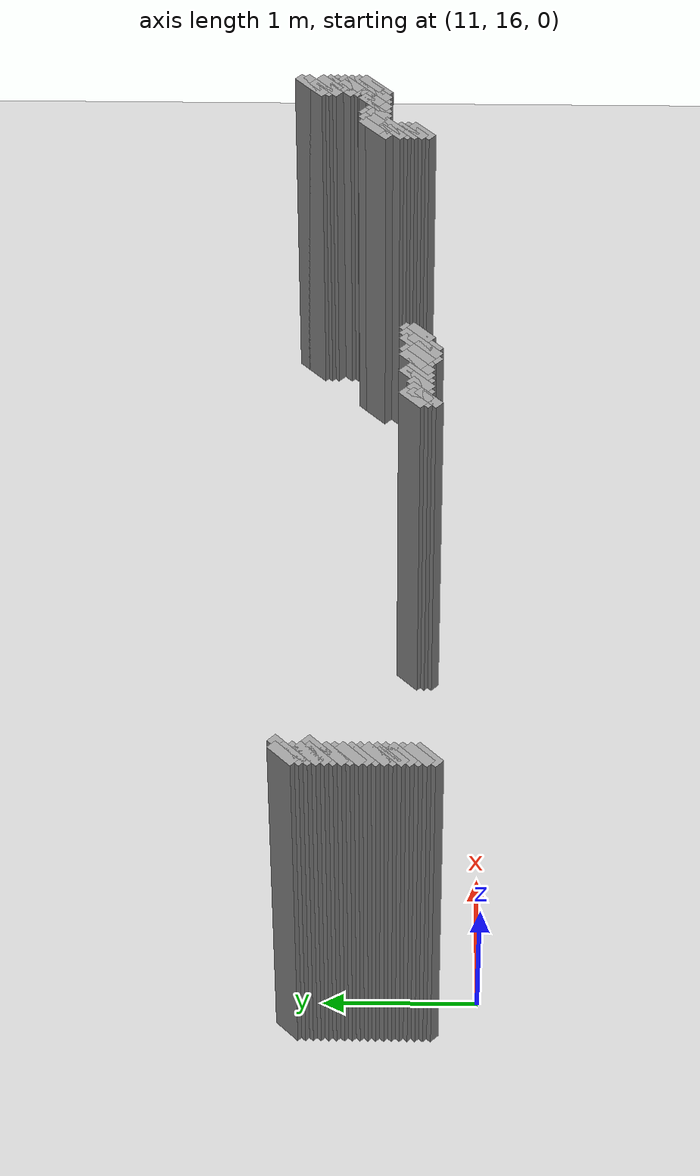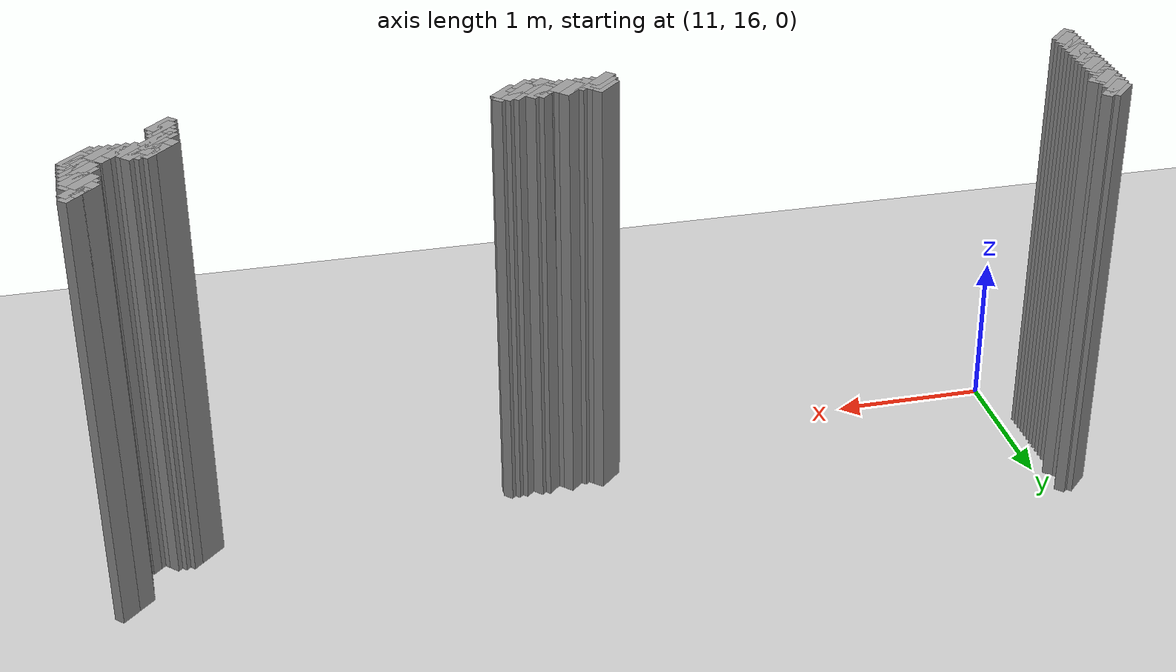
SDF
<sdf version="1.5">
 <world name="default">
  <include><uri>model://ground_plane</uri></include>
  <include><uri>model://sun</uri></include>
  <model name="grey_wall_389">
   <static>1</static>
   <link name="link">
    <pose>10.8 17.2  1.4 0 0 -0.785398163397</pose>
    <collision name="collision"><geometry><box><size>0.0707106781187 .2  2.8</size></box></geometry></collision>
    <visual name="visual">
     <cast_shadows>0</cast_shadows>
     <geometry><box><size>0.0707106781187 .2  2.8</size></box></geometry>
     <material>
      <script>
       <uri>model://grey_wall/materials/scripts</uri>
       <uri>model://grey_wall/materials/textures</uri>
       <name>vrc/grey_wall</name>
      </script>
     </material>
    </visual>
   </link>
  </model>
  <model name="grey_wall_390">
   <static>1</static>
   <link name="link">
    <pose>10.85 17.2  1.4 0 0 -0.785398163397</pose>
    <collision name="collision"><geometry><box><size>0.0707106781187 .2  2.8</size></box></geometry></collision>
    <visual name="visual">
     <cast_shadows>0</cast_shadows>
     <geometry><box><size>0.0707106781187 .2  2.8</size></box></geometry>
     <material>
      <script>
       <uri>model://grey_wall/materials/scripts</uri>
       <uri>model://grey_wall/materials/textures</uri>
       <name>vrc/grey_wall</name>
      </script>
     </material>
    </visual>
   </link>
  </model>
  <model name="grey_wall_391">
   <static>1</static>
   <link name="link">
    <pose>16.85 17.2  1.4 0 0 -0.785398163397</pose>
    <collision name="collision"><geometry><box><size>0.0707106781187 .2  2.8</size></box></geometry></collision>
    <visual name="visual">
     <cast_shadows>0</cast_shadows>
     <geometry><box><size>0.0707106781187 .2  2.8</size></box></geometry>
     <material>
      <script>
       <uri>model://grey_wall/materials/scripts</uri>
       <uri>model://grey_wall/materials/textures</uri>
       <name>vrc/grey_wall</name>
      </script>
     </material>
    </visual>
   </link>
  </model>
  <model name="grey_wall_392">
   <static>1</static>
   <link name="link">
    <pose>10.8 17.15  1.4 0 0 -0.785398163397</pose>
    <collision name="collision"><geometry><box><size>0.0707106781187 .2  2.8</size></box></geometry></collision>
    <visual name="visual">
     <cast_shadows>0</cast_shadows>
     <geometry><box><size>0.0707106781187 .2  2.8</size></box></geometry>
     <material>
      <script>
       <uri>model://grey_wall/materials/scripts</uri>
       <uri>model://grey_wall/materials/textures</uri>
       <name>vrc/grey_wall</name>
      </script>
     </material>
    </visual>
   </link>
  </model>
  <model name="grey_wall_393">
   <static>1</static>
   <link name="link">
    <pose>16.8 17.15  1.4 0 0 -0.785398163397</pose>
    <collision name="collision"><geometry><box><size>0.0707106781187 .2  2.8</size></box></geometry></collision>
    <visual name="visual">
     <cast_shadows>0</cast_shadows>
     <geometry><box><size>0.0707106781187 .2  2.8</size></box></geometry>
     <material>
      <script>
       <uri>model://grey_wall/materials/scripts</uri>
       <uri>model://grey_wall/materials/textures</uri>
       <name>vrc/grey_wall</name>
      </script>
     </material>
    </visual>
   </link>
  </model>
  <model name="grey_wall_394">
   <static>1</static>
   <link name="link">
    <pose>16.85 17.15  1.4 0 0 -0.785398163397</pose>
    <collision name="collision"><geometry><box><size>0.0707106781187 .2  2.8</size></box></geometry></collision>
    <visual name="visual">
     <cast_shadows>0</cast_shadows>
     <geometry><box><size>0.0707106781187 .2  2.8</size></box></geometry>
     <material>
      <script>
       <uri>model://grey_wall/materials/scripts</uri>
       <uri>model://grey_wall/materials/textures</uri>
       <name>vrc/grey_wall</name>
      </script>
     </material>
    </visual>
   </link>
  </model>
  <model name="grey_wall_395">
   <static>1</static>
   <link name="link">
    <pose>10.8 17.1  1.4 0 0 -0.785398163397</pose>
    <collision name="collision"><geometry><box><size>0.0707106781187 .2  2.8</size></box></geometry></collision>
    <visual name="visual">
     <cast_shadows>0</cast_shadows>
     <geometry><box><size>0.0707106781187 .2  2.8</size></box></geometry>
     <material>
      <script>
       <uri>model://grey_wall/materials/scripts</uri>
       <uri>model://grey_wall/materials/textures</uri>
       <name>vrc/grey_wall</name>
      </script>
     </material>
    </visual>
   </link>
  </model>
  <model name="grey_wall_396">
   <static>1</static>
   <link name="link">
    <pose>16.8 17.1  1.4 0 0 -0.785398163397</pose>
    <collision name="collision"><geometry><box><size>0.0707106781187 .2  2.8</size></box></geometry></collision>
    <visual name="visual">
     <cast_shadows>0</cast_shadows>
     <geometry><box><size>0.0707106781187 .2  2.8</size></box></geometry>
     <material>
      <script>
       <uri>model://grey_wall/materials/scripts</uri>
       <uri>model://grey_wall/materials/textures</uri>
       <name>vrc/grey_wall</name>
      </script>
     </material>
    </visual>
   </link>
  </model>
  <model name="grey_wall_397">
   <static>1</static>
   <link name="link">
    <pose>10.8 17.05  1.4 0 0 -0.785398163397</pose>
    <collision name="collision"><geometry><box><size>0.0707106781187 .2  2.8</size></box></geometry></collision>
    <visual name="visual">
     <cast_shadows>0</cast_shadows>
     <geometry><box><size>0.0707106781187 .2  2.8</size></box></geometry>
     <material>
      <script>
       <uri>model://grey_wall/materials/scripts</uri>
       <uri>model://grey_wall/materials/textures</uri>
       <name>vrc/grey_wall</name>
      </script>
     </material>
    </visual>
   </link>
  </model>
  <model name="grey_wall_398">
   <static>1</static>
   <link name="link">
    <pose>16.8 17.05  1.4 0 0 -0.785398163397</pose>
    <collision name="collision"><geometry><box><size>0.0707106781187 .2  2.8</size></box></geometry></collision>
    <visual name="visual">
     <cast_shadows>0</cast_shadows>
     <geometry><box><size>0.0707106781187 .2  2.8</size></box></geometry>
     <material>
      <script>
       <uri>model://grey_wall/materials/scripts</uri>
       <uri>model://grey_wall/materials/textures</uri>
       <name>vrc/grey_wall</name>
      </script>
     </material>
    </visual>
   </link>
  </model>
  <model name="grey_wall_399">
   <static>1</static>
   <link name="link">
    <pose>16.85 17.05  1.4 0 0 -0.785398163397</pose>
    <collision name="collision"><geometry><box><size>0.0707106781187 .2  2.8</size></box></geometry></collision>
    <visual name="visual">
     <cast_shadows>0</cast_shadows>
     <geometry><box><size>0.0707106781187 .2  2.8</size></box></geometry>
     <material>
      <script>
       <uri>model://grey_wall/materials/scripts</uri>
       <uri>model://grey_wall/materials/textures</uri>
       <name>vrc/grey_wall</name>
      </script>
     </material>
    </visual>
   </link>
  </model>
  <model name="grey_wall_400">
   <static>1</static>
   <link name="link">
    <pose>10.8 17.0  1.4 0 0 -0.785398163397</pose>
    <collision name="collision"><geometry><box><size>0.0707106781187 .2  2.8</size></box></geometry></collision>
    <visual name="visual">
     <cast_shadows>0</cast_shadows>
     <geometry><box><size>0.0707106781187 .2  2.8</size></box></geometry>
     <material>
      <script>
       <uri>model://grey_wall/materials/scripts</uri>
       <uri>model://grey_wall/materials/textures</uri>
       <name>vrc/grey_wall</name>
      </script>
     </material>
    </visual>
   </link>
  </model>
  <model name="grey_wall_401">
   <static>1</static>
   <link name="link">
    <pose>10.85 17.0  1.4 0 0 -0.785398163397</pose>
    <collision name="collision"><geometry><box><size>0.0707106781187 .2  2.8</size></box></geometry></collision>
    <visual name="visual">
     <cast_shadows>0</cast_shadows>
     <geometry><box><size>0.0707106781187 .2  2.8</size></box></geometry>
     <material>
      <script>
       <uri>model://grey_wall/materials/scripts</uri>
       <uri>model://grey_wall/materials/textures</uri>
       <name>vrc/grey_wall</name>
      </script>
     </material>
    </visual>
   </link>
  </model>
  <model name="grey_wall_402">
   <static>1</static>
   <link name="link">
    <pose>16.85 17.0  1.4 0 0 -0.785398163397</pose>
    <collision name="collision"><geometry><box><size>0.0707106781187 .2  2.8</size></box></geometry></collision>
    <visual name="visual">
     <cast_shadows>0</cast_shadows>
     <geometry><box><size>0.0707106781187 .2  2.8</size></box></geometry>
     <material>
      <script>
       <uri>model://grey_wall/materials/scripts</uri>
       <uri>model://grey_wall/materials/textures</uri>
       <name>vrc/grey_wall</name>
      </script>
     </material>
    </visual>
   </link>
  </model>
  <model name="grey_wall_403">
   <static>1</static>
   <link name="link">
    <pose>10.8 16.95  1.4 0 0 -0.785398163397</pose>
    <collision name="collision"><geometry><box><size>0.0707106781187 .2  2.8</size></box></geometry></collision>
    <visual name="visual">
     <cast_shadows>0</cast_shadows>
     <geometry><box><size>0.0707106781187 .2  2.8</size></box></geometry>
     <material>
      <script>
       <uri>model://grey_wall/materials/scripts</uri>
       <uri>model://grey_wall/materials/textures</uri>
       <name>vrc/grey_wall</name>
      </script>
     </material>
    </visual>
   </link>
  </model>
  <model name="grey_wall_404">
   <static>1</static>
   <link name="link">
    <pose>16.8 16.95  1.4 0 0 -0.785398163397</pose>
    <collision name="collision"><geometry><box><size>0.0707106781187 .2  2.8</size></box></geometry></collision>
    <visual name="visual">
     <cast_shadows>0</cast_shadows>
     <geometry><box><size>0.0707106781187 .2  2.8</size></box></geometry>
     <material>
      <script>
       <uri>model://grey_wall/materials/scripts</uri>
       <uri>model://grey_wall/materials/textures</uri>
       <name>vrc/grey_wall</name>
      </script>
     </material>
    </visual>
   </link>
  </model>
  <model name="grey_wall_405">
   <static>1</static>
   <link name="link">
    <pose>16.85 16.95  1.4 0 0 -0.785398163397</pose>
    <collision name="collision"><geometry><box><size>0.0707106781187 .2  2.8</size></box></geometry></collision>
    <visual name="visual">
     <cast_shadows>0</cast_shadows>
     <geometry><box><size>0.0707106781187 .2  2.8</size></box></geometry>
     <material>
      <script>
       <uri>model://grey_wall/materials/scripts</uri>
       <uri>model://grey_wall/materials/textures</uri>
       <name>vrc/grey_wall</name>
      </script>
     </material>
    </visual>
   </link>
  </model>
  <model name="grey_wall_406">
   <static>1</static>
   <link name="link">
    <pose>10.8 16.9  1.4 0 0 -0.785398163397</pose>
    <collision name="collision"><geometry><box><size>0.0707106781187 .2  2.8</size></box></geometry></collision>
    <visual name="visual">
     <cast_shadows>0</cast_shadows>
     <geometry><box><size>0.0707106781187 .2  2.8</size></box></geometry>
     <material>
      <script>
       <uri>model://grey_wall/materials/scripts</uri>
       <uri>model://grey_wall/materials/textures</uri>
       <name>vrc/grey_wall</name>
      </script>
     </material>
    </visual>
   </link>
  </model>
  <model name="grey_wall_407">
   <static>1</static>
   <link name="link">
    <pose>16.8 16.9  1.4 0 0 -0.785398163397</pose>
    <collision name="collision"><geometry><box><size>0.0707106781187 .2  2.8</size></box></geometry></collision>
    <visual name="visual">
     <cast_shadows>0</cast_shadows>
     <geometry><box><size>0.0707106781187 .2  2.8</size></box></geometry>
     <material>
      <script>
       <uri>model://grey_wall/materials/scripts</uri>
       <uri>model://grey_wall/materials/textures</uri>
       <name>vrc/grey_wall</name>
      </script>
     </material>
    </visual>
   </link>
  </model>
  <model name="grey_wall_408">
   <static>1</static>
   <link name="link">
    <pose>16.85 16.9  1.4 0 0 -0.785398163397</pose>
    <collision name="collision"><geometry><box><size>0.0707106781187 .2  2.8</size></box></geometry></collision>
    <visual name="visual">
     <cast_shadows>0</cast_shadows>
     <geometry><box><size>0.0707106781187 .2  2.8</size></box></geometry>
     <material>
      <script>
       <uri>model://grey_wall/materials/scripts</uri>
       <uri>model://grey_wall/materials/textures</uri>
       <name>vrc/grey_wall</name>
      </script>
     </material>
    </visual>
   </link>
  </model>
  <model name="grey_wall_409">
   <static>1</static>
   <link name="link">
    <pose>10.8 16.85  1.4 0 0 -0.785398163397</pose>
    <collision name="collision"><geometry><box><size>0.0707106781187 .2  2.8</size></box></geometry></collision>
    <visual name="visual">
     <cast_shadows>0</cast_shadows>
     <geometry><box><size>0.0707106781187 .2  2.8</size></box></geometry>
     <material>
      <script>
       <uri>model://grey_wall/materials/scripts</uri>
       <uri>model://grey_wall/materials/textures</uri>
       <name>vrc/grey_wall</name>
      </script>
     </material>
    </visual>
   </link>
  </model>
  <model name="grey_wall_410">
   <static>1</static>
   <link name="link">
    <pose>16.85 16.85  1.4 0 0 -0.785398163397</pose>
    <collision name="collision"><geometry><box><size>0.0707106781187 .2  2.8</size></box></geometry></collision>
    <visual name="visual">
     <cast_shadows>0</cast_shadows>
     <geometry><box><size>0.0707106781187 .2  2.8</size></box></geometry>
     <material>
      <script>
       <uri>model://grey_wall/materials/scripts</uri>
       <uri>model://grey_wall/materials/textures</uri>
       <name>vrc/grey_wall</name>
      </script>
     </material>
    </visual>
   </link>
  </model>
  <model name="grey_wall_411">
   <static>1</static>
   <link name="link">
    <pose>10.8 16.8  1.4 0 0 -0.785398163397</pose>
    <collision name="collision"><geometry><box><size>0.0707106781187 .2  2.8</size></box></geometry></collision>
    <visual name="visual">
     <cast_shadows>0</cast_shadows>
     <geometry><box><size>0.0707106781187 .2  2.8</size></box></geometry>
     <material>
      <script>
       <uri>model://grey_wall/materials/scripts</uri>
       <uri>model://grey_wall/materials/textures</uri>
       <name>vrc/grey_wall</name>
      </script>
     </material>
    </visual>
   </link>
  </model>
  <model name="grey_wall_412">
   <static>1</static>
   <link name="link">
    <pose>16.85 16.8  1.4 0 0 -0.785398163397</pose>
    <collision name="collision"><geometry><box><size>0.0707106781187 .2  2.8</size></box></geometry></collision>
    <visual name="visual">
     <cast_shadows>0</cast_shadows>
     <geometry><box><size>0.0707106781187 .2  2.8</size></box></geometry>
     <material>
      <script>
       <uri>model://grey_wall/materials/scripts</uri>
       <uri>model://grey_wall/materials/textures</uri>
       <name>vrc/grey_wall</name>
      </script>
     </material>
    </visual>
   </link>
  </model>
  <model name="grey_wall_413">
   <static>1</static>
   <link name="link">
    <pose>10.8 16.75  1.4 0 0 -0.785398163397</pose>
    <collision name="collision"><geometry><box><size>0.0707106781187 .2  2.8</size></box></geometry></collision>
    <visual name="visual">
     <cast_shadows>0</cast_shadows>
     <geometry><box><size>0.0707106781187 .2  2.8</size></box></geometry>
     <material>
      <script>
       <uri>model://grey_wall/materials/scripts</uri>
       <uri>model://grey_wall/materials/textures</uri>
       <name>vrc/grey_wall</name>
      </script>
     </material>
    </visual>
   </link>
  </model>
  <model name="grey_wall_414">
   <static>1</static>
   <link name="link">
    <pose>16.4 16.75  1.4 0 0 -0.785398163397</pose>
    <collision name="collision"><geometry><box><size>0.0707106781187 .2  2.8</size></box></geometry></collision>
    <visual name="visual">
     <cast_shadows>0</cast_shadows>
     <geometry><box><size>0.0707106781187 .2  2.8</size></box></geometry>
     <material>
      <script>
       <uri>model://grey_wall/materials/scripts</uri>
       <uri>model://grey_wall/materials/textures</uri>
       <name>vrc/grey_wall</name>
      </script>
     </material>
    </visual>
   </link>
  </model>
  <model name="grey_wall_415">
   <static>1</static>
   <link name="link">
    <pose>16.45 16.75  1.4 0 0 -0.785398163397</pose>
    <collision name="collision"><geometry><box><size>0.0707106781187 .2  2.8</size></box></geometry></collision>
    <visual name="visual">
     <cast_shadows>0</cast_shadows>
     <geometry><box><size>0.0707106781187 .2  2.8</size></box></geometry>
     <material>
      <script>
       <uri>model://grey_wall/materials/scripts</uri>
       <uri>model://grey_wall/materials/textures</uri>
       <name>vrc/grey_wall</name>
      </script>
     </material>
    </visual>
   </link>
  </model>
  <model name="grey_wall_416">
   <static>1</static>
   <link name="link">
    <pose>16.5 16.75  1.4 0 0 -0.785398163397</pose>
    <collision name="collision"><geometry><box><size>0.0707106781187 .2  2.8</size></box></geometry></collision>
    <visual name="visual">
     <cast_shadows>0</cast_shadows>
     <geometry><box><size>0.0707106781187 .2  2.8</size></box></geometry>
     <material>
      <script>
       <uri>model://grey_wall/materials/scripts</uri>
       <uri>model://grey_wall/materials/textures</uri>
       <name>vrc/grey_wall</name>
      </script>
     </material>
    </visual>
   </link>
  </model>
  <model name="grey_wall_417">
   <static>1</static>
   <link name="link">
    <pose>16.65 16.75  1.4 0 0 -0.785398163397</pose>
    <collision name="collision"><geometry><box><size>0.0707106781187 .2  2.8</size></box></geometry></collision>
    <visual name="visual">
     <cast_shadows>0</cast_shadows>
     <geometry><box><size>0.0707106781187 .2  2.8</size></box></geometry>
     <material>
      <script>
       <uri>model://grey_wall/materials/scripts</uri>
       <uri>model://grey_wall/materials/textures</uri>
       <name>vrc/grey_wall</name>
      </script>
     </material>
    </visual>
   </link>
  </model>
  <model name="grey_wall_418">
   <static>1</static>
   <link name="link">
    <pose>16.7 16.75  1.4 0 0 -0.785398163397</pose>
    <collision name="collision"><geometry><box><size>0.0707106781187 .2  2.8</size></box></geometry></collision>
    <visual name="visual">
     <cast_shadows>0</cast_shadows>
     <geometry><box><size>0.0707106781187 .2  2.8</size></box></geometry>
     <material>
      <script>
       <uri>model://grey_wall/materials/scripts</uri>
       <uri>model://grey_wall/materials/textures</uri>
       <name>vrc/grey_wall</name>
      </script>
     </material>
    </visual>
   </link>
  </model>
  <model name="grey_wall_419">
   <static>1</static>
   <link name="link">
    <pose>16.8 16.75  1.4 0 0 -0.785398163397</pose>
    <collision name="collision"><geometry><box><size>0.0707106781187 .2  2.8</size></box></geometry></collision>
    <visual name="visual">
     <cast_shadows>0</cast_shadows>
     <geometry><box><size>0.0707106781187 .2  2.8</size></box></geometry>
     <material>
      <script>
       <uri>model://grey_wall/materials/scripts</uri>
       <uri>model://grey_wall/materials/textures</uri>
       <name>vrc/grey_wall</name>
      </script>
     </material>
    </visual>
   </link>
  </model>
  <model name="grey_wall_420">
   <static>1</static>
   <link name="link">
    <pose>16.85 16.75  1.4 0 0 -0.785398163397</pose>
    <collision name="collision"><geometry><box><size>0.0707106781187 .2  2.8</size></box></geometry></collision>
    <visual name="visual">
     <cast_shadows>0</cast_shadows>
     <geometry><box><size>0.0707106781187 .2  2.8</size></box></geometry>
     <material>
      <script>
       <uri>model://grey_wall/materials/scripts</uri>
       <uri>model://grey_wall/materials/textures</uri>
       <name>vrc/grey_wall</name>
      </script>
     </material>
    </visual>
   </link>
  </model>
  <model name="grey_wall_421">
   <static>1</static>
   <link name="link">
    <pose>10.8 16.7  1.4 0 0 -0.785398163397</pose>
    <collision name="collision"><geometry><box><size>0.0707106781187 .2  2.8</size></box></geometry></collision>
    <visual name="visual">
     <cast_shadows>0</cast_shadows>
     <geometry><box><size>0.0707106781187 .2  2.8</size></box></geometry>
     <material>
      <script>
       <uri>model://grey_wall/materials/scripts</uri>
       <uri>model://grey_wall/materials/textures</uri>
       <name>vrc/grey_wall</name>
      </script>
     </material>
    </visual>
   </link>
  </model>
  <model name="grey_wall_422">
   <static>1</static>
   <link name="link">
    <pose>16.35 16.7  1.4 0 0 -0.785398163397</pose>
    <collision name="collision"><geometry><box><size>0.0707106781187 .2  2.8</size></box></geometry></collision>
    <visual name="visual">
     <cast_shadows>0</cast_shadows>
     <geometry><box><size>0.0707106781187 .2  2.8</size></box></geometry>
     <material>
      <script>
       <uri>model://grey_wall/materials/scripts</uri>
       <uri>model://grey_wall/materials/textures</uri>
       <name>vrc/grey_wall</name>
      </script>
     </material>
    </visual>
   </link>
  </model>
  <model name="grey_wall_423">
   <static>1</static>
   <link name="link">
    <pose>16.4 16.7  1.4 0 0 -0.785398163397</pose>
    <collision name="collision"><geometry><box><size>0.0707106781187 .2  2.8</size></box></geometry></collision>
    <visual name="visual">
     <cast_shadows>0</cast_shadows>
     <geometry><box><size>0.0707106781187 .2  2.8</size></box></geometry>
     <material>
      <script>
       <uri>model://grey_wall/materials/scripts</uri>
       <uri>model://grey_wall/materials/textures</uri>
       <name>vrc/grey_wall</name>
      </script>
     </material>
    </visual>
   </link>
  </model>
  <model name="grey_wall_424">
   <static>1</static>
   <link name="link">
    <pose>16.5 16.7  1.4 0 0 -0.785398163397</pose>
    <collision name="collision"><geometry><box><size>0.0707106781187 .2  2.8</size></box></geometry></collision>
    <visual name="visual">
     <cast_shadows>0</cast_shadows>
     <geometry><box><size>0.0707106781187 .2  2.8</size></box></geometry>
     <material>
      <script>
       <uri>model://grey_wall/materials/scripts</uri>
       <uri>model://grey_wall/materials/textures</uri>
       <name>vrc/grey_wall</name>
      </script>
     </material>
    </visual>
   </link>
  </model>
  <model name="grey_wall_425">
   <static>1</static>
   <link name="link">
    <pose>16.55 16.7  1.4 0 0 -0.785398163397</pose>
    <collision name="collision"><geometry><box><size>0.0707106781187 .2  2.8</size></box></geometry></collision>
    <visual name="visual">
     <cast_shadows>0</cast_shadows>
     <geometry><box><size>0.0707106781187 .2  2.8</size></box></geometry>
     <material>
      <script>
       <uri>model://grey_wall/materials/scripts</uri>
       <uri>model://grey_wall/materials/textures</uri>
       <name>vrc/grey_wall</name>
      </script>
     </material>
    </visual>
   </link>
  </model>
  <model name="grey_wall_426">
   <static>1</static>
   <link name="link">
    <pose>16.6 16.7  1.4 0 0 -0.785398163397</pose>
    <collision name="collision"><geometry><box><size>0.0707106781187 .2  2.8</size></box></geometry></collision>
    <visual name="visual">
     <cast_shadows>0</cast_shadows>
     <geometry><box><size>0.0707106781187 .2  2.8</size></box></geometry>
     <material>
      <script>
       <uri>model://grey_wall/materials/scripts</uri>
       <uri>model://grey_wall/materials/textures</uri>
       <name>vrc/grey_wall</name>
      </script>
     </material>
    </visual>
   </link>
  </model>
  <model name="grey_wall_427">
   <static>1</static>
   <link name="link">
    <pose>16.65 16.7  1.4 0 0 -0.785398163397</pose>
    <collision name="collision"><geometry><box><size>0.0707106781187 .2  2.8</size></box></geometry></collision>
    <visual name="visual">
     <cast_shadows>0</cast_shadows>
     <geometry><box><size>0.0707106781187 .2  2.8</size></box></geometry>
     <material>
      <script>
       <uri>model://grey_wall/materials/scripts</uri>
       <uri>model://grey_wall/materials/textures</uri>
       <name>vrc/grey_wall</name>
      </script>
     </material>
    </visual>
   </link>
  </model>
  <model name="grey_wall_428">
   <static>1</static>
   <link name="link">
    <pose>16.7 16.7  1.4 0 0 -0.785398163397</pose>
    <collision name="collision"><geometry><box><size>0.0707106781187 .2  2.8</size></box></geometry></collision>
    <visual name="visual">
     <cast_shadows>0</cast_shadows>
     <geometry><box><size>0.0707106781187 .2  2.8</size></box></geometry>
     <material>
      <script>
       <uri>model://grey_wall/materials/scripts</uri>
       <uri>model://grey_wall/materials/textures</uri>
       <name>vrc/grey_wall</name>
      </script>
     </material>
    </visual>
   </link>
  </model>
  <model name="grey_wall_429">
   <static>1</static>
   <link name="link">
    <pose>16.75 16.7  1.4 0 0 -0.785398163397</pose>
    <collision name="collision"><geometry><box><size>0.0707106781187 .2  2.8</size></box></geometry></collision>
    <visual name="visual">
     <cast_shadows>0</cast_shadows>
     <geometry><box><size>0.0707106781187 .2  2.8</size></box></geometry>
     <material>
      <script>
       <uri>model://grey_wall/materials/scripts</uri>
       <uri>model://grey_wall/materials/textures</uri>
       <name>vrc/grey_wall</name>
      </script>
     </material>
    </visual>
   </link>
  </model>
  <model name="grey_wall_430">
   <static>1</static>
   <link name="link">
    <pose>16.8 16.7  1.4 0 0 -0.785398163397</pose>
    <collision name="collision"><geometry><box><size>0.0707106781187 .2  2.8</size></box></geometry></collision>
    <visual name="visual">
     <cast_shadows>0</cast_shadows>
     <geometry><box><size>0.0707106781187 .2  2.8</size></box></geometry>
     <material>
      <script>
       <uri>model://grey_wall/materials/scripts</uri>
       <uri>model://grey_wall/materials/textures</uri>
       <name>vrc/grey_wall</name>
      </script>
     </material>
    </visual>
   </link>
  </model>
  <model name="grey_wall_431">
   <static>1</static>
   <link name="link">
    <pose>10.8 16.65  1.4 0 0 -0.785398163397</pose>
    <collision name="collision"><geometry><box><size>0.0707106781187 .2  2.8</size></box></geometry></collision>
    <visual name="visual">
     <cast_shadows>0</cast_shadows>
     <geometry><box><size>0.0707106781187 .2  2.8</size></box></geometry>
     <material>
      <script>
       <uri>model://grey_wall/materials/scripts</uri>
       <uri>model://grey_wall/materials/textures</uri>
       <name>vrc/grey_wall</name>
      </script>
     </material>
    </visual>
   </link>
  </model>
  <model name="grey_wall_432">
   <static>1</static>
   <link name="link">
    <pose>16.4 16.65  1.4 0 0 -0.785398163397</pose>
    <collision name="collision"><geometry><box><size>0.0707106781187 .2  2.8</size></box></geometry></collision>
    <visual name="visual">
     <cast_shadows>0</cast_shadows>
     <geometry><box><size>0.0707106781187 .2  2.8</size></box></geometry>
     <material>
      <script>
       <uri>model://grey_wall/materials/scripts</uri>
       <uri>model://grey_wall/materials/textures</uri>
       <name>vrc/grey_wall</name>
      </script>
     </material>
    </visual>
   </link>
  </model>
  <model name="grey_wall_433">
   <static>1</static>
   <link name="link">
    <pose>10.8 16.6  1.4 0 0 -0.785398163397</pose>
    <collision name="collision"><geometry><box><size>0.0707106781187 .2  2.8</size></box></geometry></collision>
    <visual name="visual">
     <cast_shadows>0</cast_shadows>
     <geometry><box><size>0.0707106781187 .2  2.8</size></box></geometry>
     <material>
      <script>
       <uri>model://grey_wall/materials/scripts</uri>
       <uri>model://grey_wall/materials/textures</uri>
       <name>vrc/grey_wall</name>
      </script>
     </material>
    </visual>
   </link>
  </model>
  <model name="grey_wall_434">
   <static>1</static>
   <link name="link">
    <pose>16.35 16.6  1.4 0 0 -0.785398163397</pose>
    <collision name="collision"><geometry><box><size>0.0707106781187 .2  2.8</size></box></geometry></collision>
    <visual name="visual">
     <cast_shadows>0</cast_shadows>
     <geometry><box><size>0.0707106781187 .2  2.8</size></box></geometry>
     <material>
      <script>
       <uri>model://grey_wall/materials/scripts</uri>
       <uri>model://grey_wall/materials/textures</uri>
       <name>vrc/grey_wall</name>
      </script>
     </material>
    </visual>
   </link>
  </model>
  <model name="grey_wall_435">
   <static>1</static>
   <link name="link">
    <pose>16.4 16.6  1.4 0 0 -0.785398163397</pose>
    <collision name="collision"><geometry><box><size>0.0707106781187 .2  2.8</size></box></geometry></collision>
    <visual name="visual">
     <cast_shadows>0</cast_shadows>
     <geometry><box><size>0.0707106781187 .2  2.8</size></box></geometry>
     <material>
      <script>
       <uri>model://grey_wall/materials/scripts</uri>
       <uri>model://grey_wall/materials/textures</uri>
       <name>vrc/grey_wall</name>
      </script>
     </material>
    </visual>
   </link>
  </model>
  <model name="grey_wall_436">
   <static>1</static>
   <link name="link">
    <pose>10.8 16.55  1.4 0 0 -0.785398163397</pose>
    <collision name="collision"><geometry><box><size>0.0707106781187 .2  2.8</size></box></geometry></collision>
    <visual name="visual">
     <cast_shadows>0</cast_shadows>
     <geometry><box><size>0.0707106781187 .2  2.8</size></box></geometry>
     <material>
      <script>
       <uri>model://grey_wall/materials/scripts</uri>
       <uri>model://grey_wall/materials/textures</uri>
       <name>vrc/grey_wall</name>
      </script>
     </material>
    </visual>
   </link>
  </model>
  <model name="grey_wall_437">
   <static>1</static>
   <link name="link">
    <pose>16.35 16.55  1.4 0 0 -0.785398163397</pose>
    <collision name="collision"><geometry><box><size>0.0707106781187 .2  2.8</size></box></geometry></collision>
    <visual name="visual">
     <cast_shadows>0</cast_shadows>
     <geometry><box><size>0.0707106781187 .2  2.8</size></box></geometry>
     <material>
      <script>
       <uri>model://grey_wall/materials/scripts</uri>
       <uri>model://grey_wall/materials/textures</uri>
       <name>vrc/grey_wall</name>
      </script>
     </material>
    </visual>
   </link>
  </model>
  <model name="grey_wall_438">
   <static>1</static>
   <link name="link">
    <pose>10.8 16.5  1.4 0 0 -0.785398163397</pose>
    <collision name="collision"><geometry><box><size>0.0707106781187 .2  2.8</size></box></geometry></collision>
    <visual name="visual">
     <cast_shadows>0</cast_shadows>
     <geometry><box><size>0.0707106781187 .2  2.8</size></box></geometry>
     <material>
      <script>
       <uri>model://grey_wall/materials/scripts</uri>
       <uri>model://grey_wall/materials/textures</uri>
       <name>vrc/grey_wall</name>
      </script>
     </material>
    </visual>
   </link>
  </model>
  <model name="grey_wall_439">
   <static>1</static>
   <link name="link">
    <pose>16.35 16.5  1.4 0 0 -0.785398163397</pose>
    <collision name="collision"><geometry><box><size>0.0707106781187 .2  2.8</size></box></geometry></collision>
    <visual name="visual">
     <cast_shadows>0</cast_shadows>
     <geometry><box><size>0.0707106781187 .2  2.8</size></box></geometry>
     <material>
      <script>
       <uri>model://grey_wall/materials/scripts</uri>
       <uri>model://grey_wall/materials/textures</uri>
       <name>vrc/grey_wall</name>
      </script>
     </material>
    </visual>
   </link>
  </model>
  <model name="grey_wall_440">
   <static>1</static>
   <link name="link">
    <pose>10.8 16.45  1.4 0 0 -0.785398163397</pose>
    <collision name="collision"><geometry><box><size>0.0707106781187 .2  2.8</size></box></geometry></collision>
    <visual name="visual">
     <cast_shadows>0</cast_shadows>
     <geometry><box><size>0.0707106781187 .2  2.8</size></box></geometry>
     <material>
      <script>
       <uri>model://grey_wall/materials/scripts</uri>
       <uri>model://grey_wall/materials/textures</uri>
       <name>vrc/grey_wall</name>
      </script>
     </material>
    </visual>
   </link>
  </model>
  <model name="grey_wall_441">
   <static>1</static>
   <link name="link">
    <pose>13.75 16.45  1.4 0 0 -0.785398163397</pose>
    <collision name="collision"><geometry><box><size>0.0707106781187 .2  2.8</size></box></geometry></collision>
    <visual name="visual">
     <cast_shadows>0</cast_shadows>
     <geometry><box><size>0.0707106781187 .2  2.8</size></box></geometry>
     <material>
      <script>
       <uri>model://grey_wall/materials/scripts</uri>
       <uri>model://grey_wall/materials/textures</uri>
       <name>vrc/grey_wall</name>
      </script>
     </material>
    </visual>
   </link>
  </model>
  <model name="grey_wall_442">
   <static>1</static>
   <link name="link">
    <pose>13.95 16.45  1.4 0 0 -0.785398163397</pose>
    <collision name="collision"><geometry><box><size>0.0707106781187 .2  2.8</size></box></geometry></collision>
    <visual name="visual">
     <cast_shadows>0</cast_shadows>
     <geometry><box><size>0.0707106781187 .2  2.8</size></box></geometry>
     <material>
      <script>
       <uri>model://grey_wall/materials/scripts</uri>
       <uri>model://grey_wall/materials/textures</uri>
       <name>vrc/grey_wall</name>
      </script>
     </material>
    </visual>
   </link>
  </model>
  <model name="grey_wall_443">
   <static>1</static>
   <link name="link">
    <pose>14.1 16.45  1.4 0 0 -0.785398163397</pose>
    <collision name="collision"><geometry><box><size>0.0707106781187 .2  2.8</size></box></geometry></collision>
    <visual name="visual">
     <cast_shadows>0</cast_shadows>
     <geometry><box><size>0.0707106781187 .2  2.8</size></box></geometry>
     <material>
      <script>
       <uri>model://grey_wall/materials/scripts</uri>
       <uri>model://grey_wall/materials/textures</uri>
       <name>vrc/grey_wall</name>
      </script>
     </material>
    </visual>
   </link>
  </model>
  <model name="grey_wall_444">
   <static>1</static>
   <link name="link">
    <pose>14.15 16.45  1.4 0 0 -0.785398163397</pose>
    <collision name="collision"><geometry><box><size>0.0707106781187 .2  2.8</size></box></geometry></collision>
    <visual name="visual">
     <cast_shadows>0</cast_shadows>
     <geometry><box><size>0.0707106781187 .2  2.8</size></box></geometry>
     <material>
      <script>
       <uri>model://grey_wall/materials/scripts</uri>
       <uri>model://grey_wall/materials/textures</uri>
       <name>vrc/grey_wall</name>
      </script>
     </material>
    </visual>
   </link>
  </model>
  <model name="grey_wall_445">
   <static>1</static>
   <link name="link">
    <pose>14.25 16.45  1.4 0 0 -0.785398163397</pose>
    <collision name="collision"><geometry><box><size>0.0707106781187 .2  2.8</size></box></geometry></collision>
    <visual name="visual">
     <cast_shadows>0</cast_shadows>
     <geometry><box><size>0.0707106781187 .2  2.8</size></box></geometry>
     <material>
      <script>
       <uri>model://grey_wall/materials/scripts</uri>
       <uri>model://grey_wall/materials/textures</uri>
       <name>vrc/grey_wall</name>
      </script>
     </material>
    </visual>
   </link>
  </model>
  <model name="grey_wall_446">
   <static>1</static>
   <link name="link">
    <pose>14.3 16.45  1.4 0 0 -0.785398163397</pose>
    <collision name="collision"><geometry><box><size>0.0707106781187 .2  2.8</size></box></geometry></collision>
    <visual name="visual">
     <cast_shadows>0</cast_shadows>
     <geometry><box><size>0.0707106781187 .2  2.8</size></box></geometry>
     <material>
      <script>
       <uri>model://grey_wall/materials/scripts</uri>
       <uri>model://grey_wall/materials/textures</uri>
       <name>vrc/grey_wall</name>
      </script>
     </material>
    </visual>
   </link>
  </model>
  <model name="grey_wall_447">
   <static>1</static>
   <link name="link">
    <pose>14.35 16.45  1.4 0 0 -0.785398163397</pose>
    <collision name="collision"><geometry><box><size>0.0707106781187 .2  2.8</size></box></geometry></collision>
    <visual name="visual">
     <cast_shadows>0</cast_shadows>
     <geometry><box><size>0.0707106781187 .2  2.8</size></box></geometry>
     <material>
      <script>
       <uri>model://grey_wall/materials/scripts</uri>
       <uri>model://grey_wall/materials/textures</uri>
       <name>vrc/grey_wall</name>
      </script>
     </material>
    </visual>
   </link>
  </model>
  <model name="grey_wall_448">
   <static>1</static>
   <link name="link">
    <pose>16.35 16.45  1.4 0 0 -0.785398163397</pose>
    <collision name="collision"><geometry><box><size>0.0707106781187 .2  2.8</size></box></geometry></collision>
    <visual name="visual">
     <cast_shadows>0</cast_shadows>
     <geometry><box><size>0.0707106781187 .2  2.8</size></box></geometry>
     <material>
      <script>
       <uri>model://grey_wall/materials/scripts</uri>
       <uri>model://grey_wall/materials/textures</uri>
       <name>vrc/grey_wall</name>
      </script>
     </material>
    </visual>
   </link>
  </model>
  <model name="grey_wall_449">
   <static>1</static>
   <link name="link">
    <pose>10.8 16.4  1.4 0 0 -0.785398163397</pose>
    <collision name="collision"><geometry><box><size>0.0707106781187 .2  2.8</size></box></geometry></collision>
    <visual name="visual">
     <cast_shadows>0</cast_shadows>
     <geometry><box><size>0.0707106781187 .2  2.8</size></box></geometry>
     <material>
      <script>
       <uri>model://grey_wall/materials/scripts</uri>
       <uri>model://grey_wall/materials/textures</uri>
       <name>vrc/grey_wall</name>
      </script>
     </material>
    </visual>
   </link>
  </model>
  <model name="grey_wall_450">
   <static>1</static>
   <link name="link">
    <pose>13.75 16.4  1.4 0 0 -0.785398163397</pose>
    <collision name="collision"><geometry><box><size>0.0707106781187 .2  2.8</size></box></geometry></collision>
    <visual name="visual">
     <cast_shadows>0</cast_shadows>
     <geometry><box><size>0.0707106781187 .2  2.8</size></box></geometry>
     <material>
      <script>
       <uri>model://grey_wall/materials/scripts</uri>
       <uri>model://grey_wall/materials/textures</uri>
       <name>vrc/grey_wall</name>
      </script>
     </material>
    </visual>
   </link>
  </model>
  <model name="grey_wall_451">
   <static>1</static>
   <link name="link">
    <pose>13.8 16.4  1.4 0 0 -0.785398163397</pose>
    <collision name="collision"><geometry><box><size>0.0707106781187 .2  2.8</size></box></geometry></collision>
    <visual name="visual">
     <cast_shadows>0</cast_shadows>
     <geometry><box><size>0.0707106781187 .2  2.8</size></box></geometry>
     <material>
      <script>
       <uri>model://grey_wall/materials/scripts</uri>
       <uri>model://grey_wall/materials/textures</uri>
       <name>vrc/grey_wall</name>
      </script>
     </material>
    </visual>
   </link>
  </model>
  <model name="grey_wall_452">
   <static>1</static>
   <link name="link">
    <pose>13.85 16.4  1.4 0 0 -0.785398163397</pose>
    <collision name="collision"><geometry><box><size>0.0707106781187 .2  2.8</size></box></geometry></collision>
    <visual name="visual">
     <cast_shadows>0</cast_shadows>
     <geometry><box><size>0.0707106781187 .2  2.8</size></box></geometry>
     <material>
      <script>
       <uri>model://grey_wall/materials/scripts</uri>
       <uri>model://grey_wall/materials/textures</uri>
       <name>vrc/grey_wall</name>
      </script>
     </material>
    </visual>
   </link>
  </model>
  <model name="grey_wall_453">
   <static>1</static>
   <link name="link">
    <pose>13.9 16.4  1.4 0 0 -0.785398163397</pose>
    <collision name="collision"><geometry><box><size>0.0707106781187 .2  2.8</size></box></geometry></collision>
    <visual name="visual">
     <cast_shadows>0</cast_shadows>
     <geometry><box><size>0.0707106781187 .2  2.8</size></box></geometry>
     <material>
      <script>
       <uri>model://grey_wall/materials/scripts</uri>
       <uri>model://grey_wall/materials/textures</uri>
       <name>vrc/grey_wall</name>
      </script>
     </material>
    </visual>
   </link>
  </model>
  <model name="grey_wall_454">
   <static>1</static>
   <link name="link">
    <pose>13.95 16.4  1.4 0 0 -0.785398163397</pose>
    <collision name="collision"><geometry><box><size>0.0707106781187 .2  2.8</size></box></geometry></collision>
    <visual name="visual">
     <cast_shadows>0</cast_shadows>
     <geometry><box><size>0.0707106781187 .2  2.8</size></box></geometry>
     <material>
      <script>
       <uri>model://grey_wall/materials/scripts</uri>
       <uri>model://grey_wall/materials/textures</uri>
       <name>vrc/grey_wall</name>
      </script>
     </material>
    </visual>
   </link>
  </model>
  <model name="grey_wall_455">
   <static>1</static>
   <link name="link">
    <pose>14.0 16.4  1.4 0 0 -0.785398163397</pose>
    <collision name="collision"><geometry><box><size>0.0707106781187 .2  2.8</size></box></geometry></collision>
    <visual name="visual">
     <cast_shadows>0</cast_shadows>
     <geometry><box><size>0.0707106781187 .2  2.8</size></box></geometry>
     <material>
      <script>
       <uri>model://grey_wall/materials/scripts</uri>
       <uri>model://grey_wall/materials/textures</uri>
       <name>vrc/grey_wall</name>
      </script>
     </material>
    </visual>
   </link>
  </model>
  <model name="grey_wall_456">
   <static>1</static>
   <link name="link">
    <pose>14.05 16.4  1.4 0 0 -0.785398163397</pose>
    <collision name="collision"><geometry><box><size>0.0707106781187 .2  2.8</size></box></geometry></collision>
    <visual name="visual">
     <cast_shadows>0</cast_shadows>
     <geometry><box><size>0.0707106781187 .2  2.8</size></box></geometry>
     <material>
      <script>
       <uri>model://grey_wall/materials/scripts</uri>
       <uri>model://grey_wall/materials/textures</uri>
       <name>vrc/grey_wall</name>
      </script>
     </material>
    </visual>
   </link>
  </model>
  <model name="grey_wall_457">
   <static>1</static>
   <link name="link">
    <pose>14.1 16.4  1.4 0 0 -0.785398163397</pose>
    <collision name="collision"><geometry><box><size>0.0707106781187 .2  2.8</size></box></geometry></collision>
    <visual name="visual">
     <cast_shadows>0</cast_shadows>
     <geometry><box><size>0.0707106781187 .2  2.8</size></box></geometry>
     <material>
      <script>
       <uri>model://grey_wall/materials/scripts</uri>
       <uri>model://grey_wall/materials/textures</uri>
       <name>vrc/grey_wall</name>
      </script>
     </material>
    </visual>
   </link>
  </model>
  <model name="grey_wall_458">
   <static>1</static>
   <link name="link">
    <pose>14.15 16.4  1.4 0 0 -0.785398163397</pose>
    <collision name="collision"><geometry><box><size>0.0707106781187 .2  2.8</size></box></geometry></collision>
    <visual name="visual">
     <cast_shadows>0</cast_shadows>
     <geometry><box><size>0.0707106781187 .2  2.8</size></box></geometry>
     <material>
      <script>
       <uri>model://grey_wall/materials/scripts</uri>
       <uri>model://grey_wall/materials/textures</uri>
       <name>vrc/grey_wall</name>
      </script>
     </material>
    </visual>
   </link>
  </model>
  <model name="grey_wall_459">
   <static>1</static>
   <link name="link">
    <pose>14.25 16.4  1.4 0 0 -0.785398163397</pose>
    <collision name="collision"><geometry><box><size>0.0707106781187 .2  2.8</size></box></geometry></collision>
    <visual name="visual">
     <cast_shadows>0</cast_shadows>
     <geometry><box><size>0.0707106781187 .2  2.8</size></box></geometry>
     <material>
      <script>
       <uri>model://grey_wall/materials/scripts</uri>
       <uri>model://grey_wall/materials/textures</uri>
       <name>vrc/grey_wall</name>
      </script>
     </material>
    </visual>
   </link>
  </model>
  <model name="grey_wall_460">
   <static>1</static>
   <link name="link">
    <pose>14.35 16.4  1.4 0 0 -0.785398163397</pose>
    <collision name="collision"><geometry><box><size>0.0707106781187 .2  2.8</size></box></geometry></collision>
    <visual name="visual">
     <cast_shadows>0</cast_shadows>
     <geometry><box><size>0.0707106781187 .2  2.8</size></box></geometry>
     <material>
      <script>
       <uri>model://grey_wall/materials/scripts</uri>
       <uri>model://grey_wall/materials/textures</uri>
       <name>vrc/grey_wall</name>
      </script>
     </material>
    </visual>
   </link>
  </model>
  <model name="grey_wall_461">
   <static>1</static>
   <link name="link">
    <pose>16.35 16.4  1.4 0 0 -0.785398163397</pose>
    <collision name="collision"><geometry><box><size>0.0707106781187 .2  2.8</size></box></geometry></collision>
    <visual name="visual">
     <cast_shadows>0</cast_shadows>
     <geometry><box><size>0.0707106781187 .2  2.8</size></box></geometry>
     <material>
      <script>
       <uri>model://grey_wall/materials/scripts</uri>
       <uri>model://grey_wall/materials/textures</uri>
       <name>vrc/grey_wall</name>
      </script>
     </material>
    </visual>
   </link>
  </model>
  <model name="grey_wall_462">
   <static>1</static>
   <link name="link">
    <pose>10.8 16.35  1.4 0 0 -0.785398163397</pose>
    <collision name="collision"><geometry><box><size>0.0707106781187 .2  2.8</size></box></geometry></collision>
    <visual name="visual">
     <cast_shadows>0</cast_shadows>
     <geometry><box><size>0.0707106781187 .2  2.8</size></box></geometry>
     <material>
      <script>
       <uri>model://grey_wall/materials/scripts</uri>
       <uri>model://grey_wall/materials/textures</uri>
       <name>vrc/grey_wall</name>
      </script>
     </material>
    </visual>
   </link>
  </model>
  <model name="grey_wall_463">
   <static>1</static>
   <link name="link">
    <pose>13.75 16.35  1.4 0 0 -0.785398163397</pose>
    <collision name="collision"><geometry><box><size>0.0707106781187 .2  2.8</size></box></geometry></collision>
    <visual name="visual">
     <cast_shadows>0</cast_shadows>
     <geometry><box><size>0.0707106781187 .2  2.8</size></box></geometry>
     <material>
      <script>
       <uri>model://grey_wall/materials/scripts</uri>
       <uri>model://grey_wall/materials/textures</uri>
       <name>vrc/grey_wall</name>
      </script>
     </material>
    </visual>
   </link>
  </model>
  <model name="grey_wall_464">
   <static>1</static>
   <link name="link">
    <pose>14.15 16.35  1.4 0 0 -0.785398163397</pose>
    <collision name="collision"><geometry><box><size>0.0707106781187 .2  2.8</size></box></geometry></collision>
    <visual name="visual">
     <cast_shadows>0</cast_shadows>
     <geometry><box><size>0.0707106781187 .2  2.8</size></box></geometry>
     <material>
      <script>
       <uri>model://grey_wall/materials/scripts</uri>
       <uri>model://grey_wall/materials/textures</uri>
       <name>vrc/grey_wall</name>
      </script>
     </material>
    </visual>
   </link>
  </model>
  <model name="grey_wall_465">
   <static>1</static>
   <link name="link">
    <pose>14.2 16.35  1.4 0 0 -0.785398163397</pose>
    <collision name="collision"><geometry><box><size>0.0707106781187 .2  2.8</size></box></geometry></collision>
    <visual name="visual">
     <cast_shadows>0</cast_shadows>
     <geometry><box><size>0.0707106781187 .2  2.8</size></box></geometry>
     <material>
      <script>
       <uri>model://grey_wall/materials/scripts</uri>
       <uri>model://grey_wall/materials/textures</uri>
       <name>vrc/grey_wall</name>
      </script>
     </material>
    </visual>
   </link>
  </model>
  <model name="grey_wall_466">
   <static>1</static>
   <link name="link">
    <pose>14.25 16.35  1.4 0 0 -0.785398163397</pose>
    <collision name="collision"><geometry><box><size>0.0707106781187 .2  2.8</size></box></geometry></collision>
    <visual name="visual">
     <cast_shadows>0</cast_shadows>
     <geometry><box><size>0.0707106781187 .2  2.8</size></box></geometry>
     <material>
      <script>
       <uri>model://grey_wall/materials/scripts</uri>
       <uri>model://grey_wall/materials/textures</uri>
       <name>vrc/grey_wall</name>
      </script>
     </material>
    </visual>
   </link>
  </model>
 </world>
</sdf>
